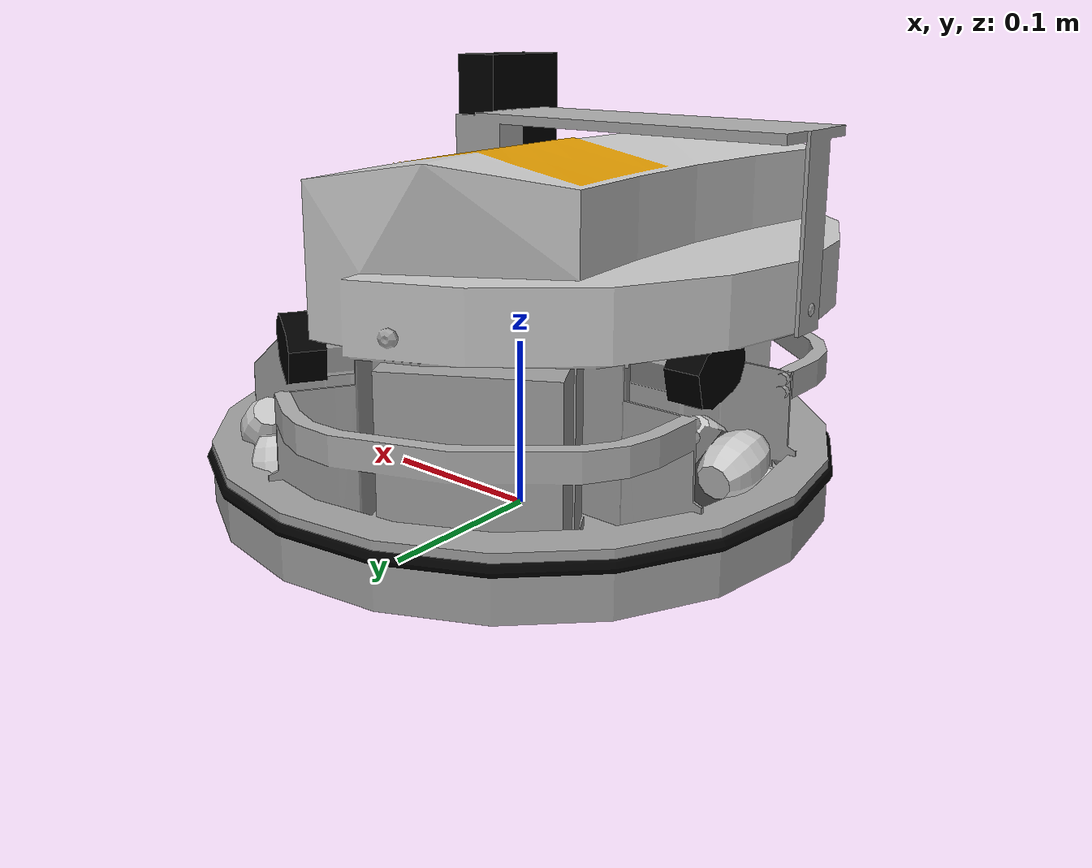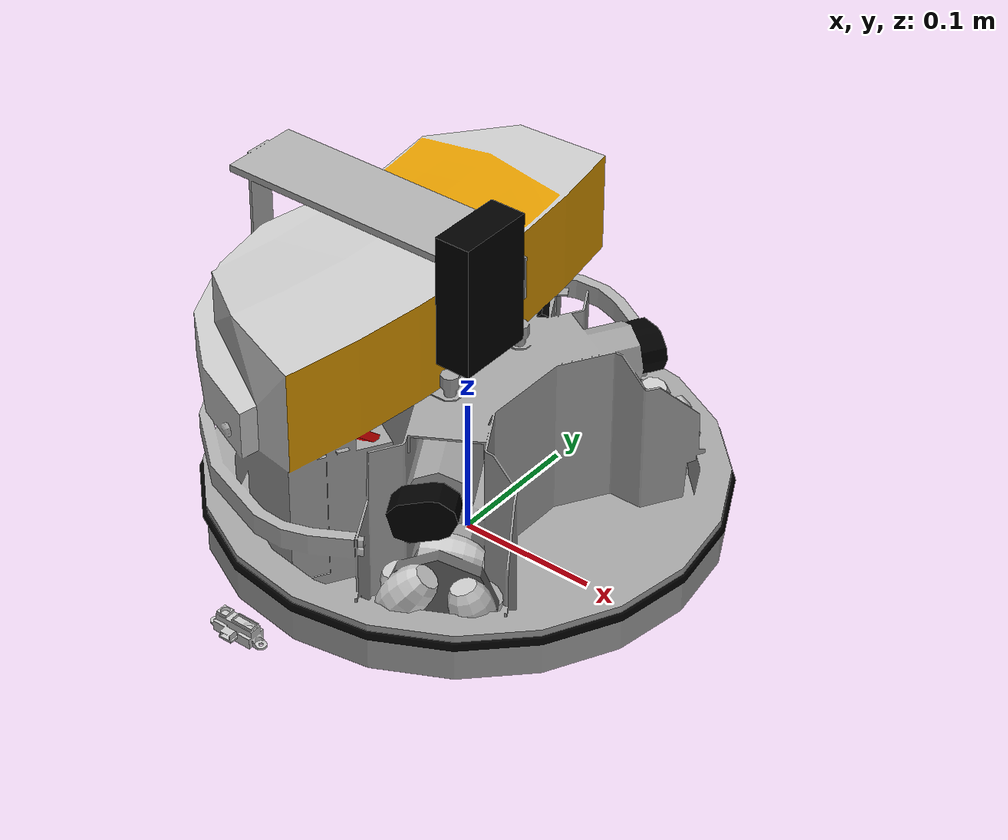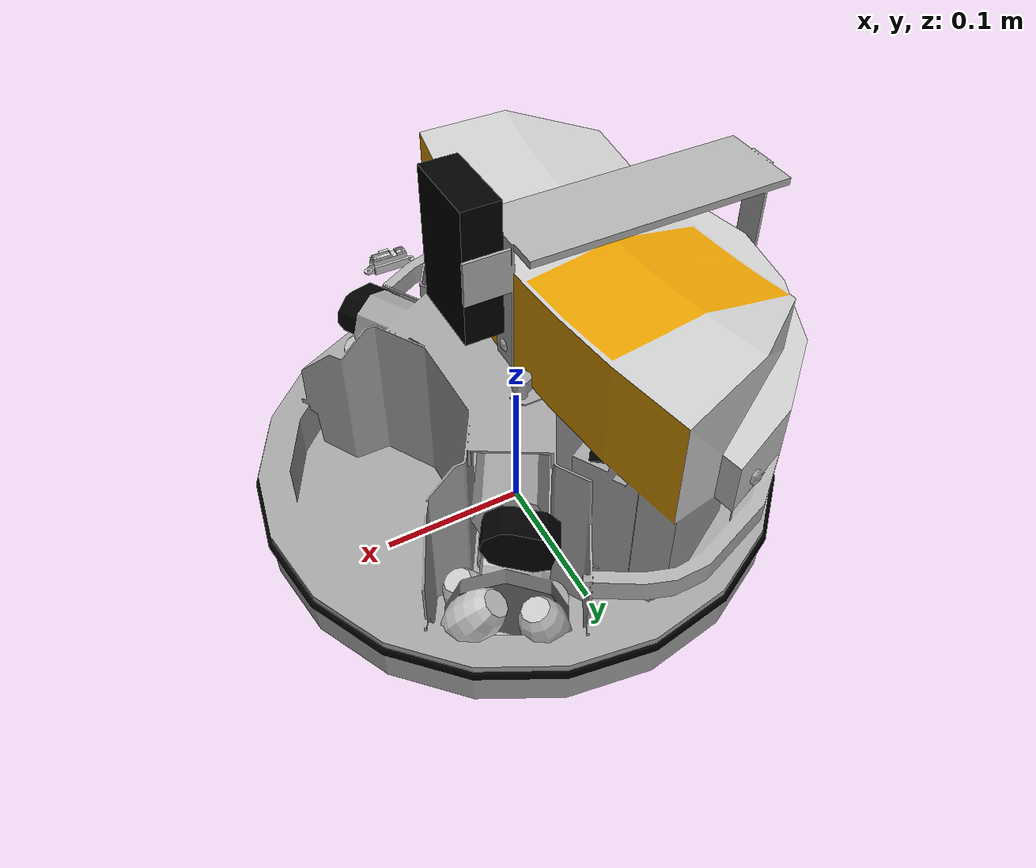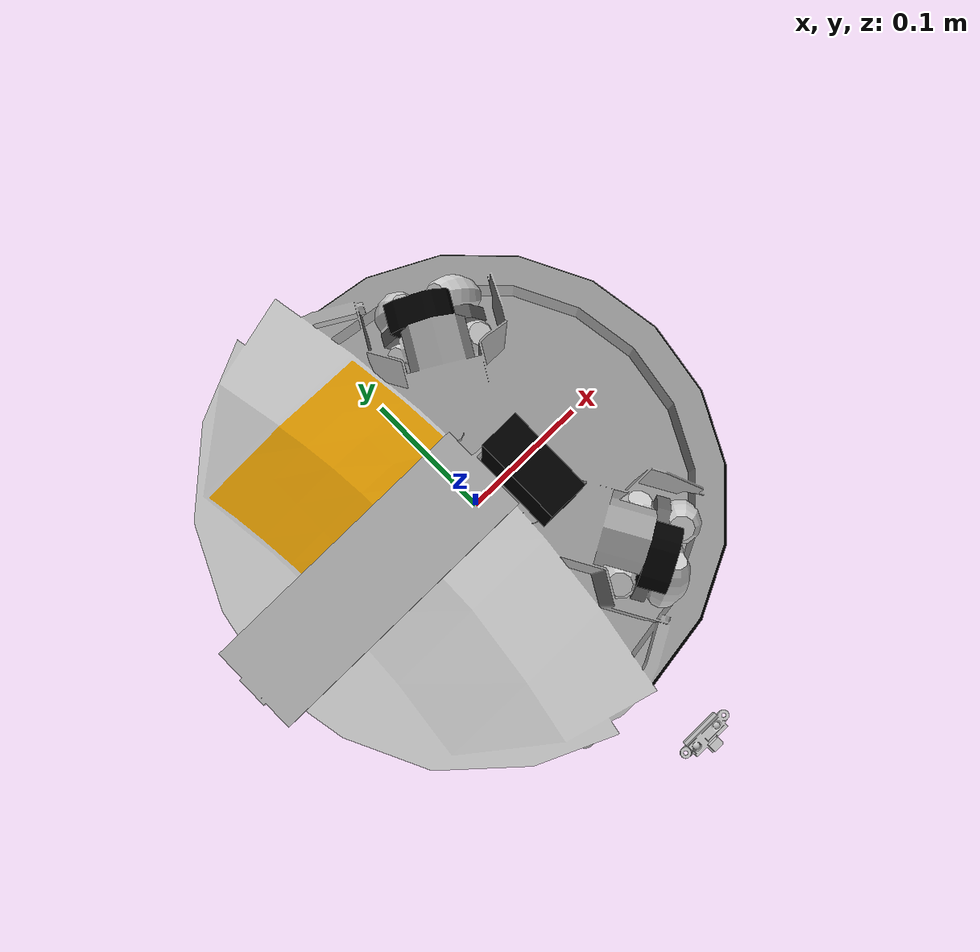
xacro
<?xml version="1.0"?>
<robot xmlns:xacro="http://wiki.ros.org/xacro" name="robotino">
  <!-- Instanciate and include the robotino_body -->
  <xacro:include filename="$(find robotino_description)/urdf/components/robotino_body.urdf.xacro"/>
  <xacro:robotino_body/>
  <!-- Instanciate and include the robotino_parts -->
  <xacro:include filename="$(find robotino_description)/urdf/components/robotino_parts.urdf.xacro"/>
  <xacro:wheel name="wheel0" parent="base_link">
    <origin xyz="0.065 0.11 0.04" rpy="0 0 1.04719666667"/>
    <axis xyz="-1 0 0"/>
  </xacro:wheel>
  <xacro:wheel name="wheel1" parent="base_link">
    <origin xyz="-0.13 0 0.04" rpy="0 0 0"/>
    <axis xyz="1 0 0"/>
  </xacro:wheel>
  <xacro:wheel name="wheel2" parent="base_link">
    <origin xyz="0.065 -0.11 0.04" rpy="0 0 -1.04719666667"/>
    <axis xyz="-1 0 0"/>
  </xacro:wheel>
  <xacro:command_bridge name="command_bridge" parent="base_link">
    <origin rpy="0 0 1.570795" xyz="-0.05 0 0.13"/>
  </xacro:command_bridge>
  <xacro:anglebracketusb name="anglebracketusb" parent="base_link">
    <origin rpy="0 0 1.570795" xyz="0.008 0 0.137"/>
  </xacro:anglebracketusb>
  <xacro:include filename="$(find robotino_description)/urdf/sensors/Sharp_IR_Sensor.urdf.xacro"/>
  <xacro:Ir_sensor name="ir1" parent="base_link">
    <origin rpy="0 0 0" xyz="0 -0.2264 0.0566"/>
  </xacro:Ir_sensor>
</robot>

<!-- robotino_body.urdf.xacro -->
<robot xmlns:xacro="http://wiki.ros.org/xacro">
  <xacro:property name="M_PI" value="3.14159"/>
  <xacro:property name="M_SCALE" value="0.01"/>
  <xacro:property name="BASE_RADIUS" value="0.18"/>
  <xacro:property name="BASE_HEIGHT" value="0.05"/>
  <xacro:property name="BASE_MASS" value="20"/>
  <!-- robotino_body -->
  <xacro:macro name="robotino_body">
    <!-- base_link -->
    <link name="base_link">
      <inertial>
        <mass value="${BASE_MASS}"/>
        <origin xyz="0 0 0"/>
        <inertia ixx="1.0" ixy="0.0" ixz="0.0" iyy="1.0" iyz="0.0" izz="1.0"/>
      </inertial>
      <visual>
        <origin xyz="0.01 0 0" rpy="0 0 ${M_PI/2}"/>
        <geometry>
          <mesh filename="package://robotino_description/meshes/parts/robotino_base.dae" scale="${M_SCALE} ${M_SCALE} ${M_SCALE}"/>
        </geometry>
      </visual>
      <collision>
        <origin xyz="0 0 ${BASE_HEIGHT/2}" rpy="0 0 0"/>
        <geometry>
          <cylinder radius="${BASE_RADIUS}" length="${BASE_HEIGHT}"/>
        </geometry>
      </collision>
    </link>
  </xacro:macro>
</robot>

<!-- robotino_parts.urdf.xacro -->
<robot xmlns:xacro="http://wiki.ros.org/xacro">
  <xacro:property name="M_PI" value="3.14159"/>
  <xacro:property name="M_SCALE" value="0.01"/>
  <xacro:property name="PLATFORM_HEIGHT" value="0.58"/>
  <xacro:property name="PLATFORM_RADIUS" value="0.22"/>
  <!-- wheel -->
  <xacro:macro name="wheel" params="parent name *origin *axis">
    <link name="${name}_link">
      <inertial>
        <mass value="0.00001"/>
        <origin xyz="0 0 0"/>
        <inertia ixx="1.0" ixy="0.0" ixz="0.0" iyy="1.0" iyz="0.0" izz="1.0"/>
      </inertial>
      <visual>
        <origin xyz="0 0 0" rpy="0 0 0"/>
        <geometry>
          <mesh filename="package://robotino_description/meshes/parts/robotino_wheel.dae" scale="${M_SCALE} ${M_SCALE} ${M_SCALE}"/>
        </geometry>
      </visual>
    </link>
    <joint name="${name}_joint" type="continuous">
      <xacro:insert_block name="origin"/>
      <xacro:insert_block name="axis"/>
      <parent link="${parent}"/>
      <child link="${name}_link"/>
    </joint>
    <transmission name="${name}_joint_trans">
      <type>transmissio_interface/SimpleTransmission</type>
      <joint name="${name}_joint"/>
      <actuator name="${name}_motor">
        <hardwareInterface>EffortJointInterface</hardwareInterface>
        <mechanicalReducation>1</mechanicalReducation>
      </actuator>
    </transmission>
  </xacro:macro>
  <!-- command bridge -->
  <xacro:macro name="command_bridge" params="parent name *origin">
    <link name="${name}_link">
      <inertial>
        <mass value="0.00001"/>
        <origin xyz="0 0 0"/>
        <inertia ixx="1.0" ixy="0.0" ixz="0.0" iyy="1.0" iyz="0.0" izz="1.0"/>
      </inertial>
      <collision>
        <origin xyz="0 0 0" rpy="0 0 0"/>
        <geometry>
          <box size="0.25 0.11 0.16"/>
        </geometry>
      </collision>
    </link>
    <joint name="${name}_joint" type="fixed">
      <xacro:insert_block name="origin"/>
      <parent link="${parent}"/>
      <child link="${name}_link"/>
    </joint>
  </xacro:macro>
  <!-- angle bracket with USB hub -->
  <xacro:macro name="anglebracketusb" params="parent name *origin">
    <link name="${name}_link">
      <inertial>
        <mass value="0.00001"/>
        <origin xyz="0 0 0"/>
        <inertia ixx="1.0" ixy="0.0" ixz="0.0" iyy="1.0" iyz="0.0" izz="1.0"/>
      </inertial>
      <visual>
        <origin xyz="0 0 0" rpy="0 0 0"/>
        <geometry>
          <mesh filename="package://robotino_description/meshes/parts/angle_bracket_usb_hub.dae" scale="${M_SCALE} ${M_SCALE} ${M_SCALE}"/>
        </geometry>
      </visual>
    </link>
    <joint name="${name}_joint" type="fixed">
      <xacro:insert_block name="origin"/>
      <parent link="${parent}"/>
      <child link="${name}_link"/>
    </joint>
  </xacro:macro>
  <!-- platform -->
  <xacro:macro name="platform" params="parent name *origin">
    <link name="${name}_link">
      <inertial>
        <mass value="0.00001"/>
        <origin xyz="0 0 0"/>
        <inertia ixx="1.0" ixy="0.0" ixz="0.0" iyy="1.0" iyz="0.0" izz="1.0"/>
      </inertial>
      <visual>
        <origin xyz="0 0 ${PLATFORM_HEIGHT/2}"/>
        <geometry>
          <cylinder radius="0.04" length="${PLATFORM_HEIGHT}"/>
        </geometry>
      </visual>
      <visual>
        <origin xyz="0 0 ${PLATFORM_HEIGHT}"/>
        <geometry>
          <!-- actual length = 0.015 -->
          <cylinder radius="${PLATFORM_RADIUS}" length="0.02"/>
        </geometry>
      </visual>
    </link>
    <joint name="${name}_joint" type="fixed">
      <xacro:insert_block name="origin"/>
      <parent link="${parent}"/>
      <child link="${name}_link"/>
    </joint>
  </xacro:macro>
</robot>

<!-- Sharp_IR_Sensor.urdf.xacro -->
<robot xmlns:xacro="http://wiki.ros.org/xacro">
  <xacro:property name="M_PI" value="3.14159"/>
  <xacro:property name="M_SCALE" value="0.001"/>
  <xacro:macro name="Ir_sensor" params="parent name *origin">
    <link name="${name}_link">
      <inertial>
        <mass value="0.00001"/>
        <origin xyz="0 0 0"/>
        <inertia ixx="1.0" ixy="0.0" ixz="0.0" iyy="1.0" iyz="0.0" izz="1.0"/>
      </inertial>
      <visual>
        <origin xyz="0 0 0" rpy="0 0 0"/>
        <geometry>
          <mesh filename="package://robotino_description/meshes/sensors/Sharp_IR_Sensor_GP2Y0A41SK0F.dae" scale="${M_SCALE} ${M_SCALE} ${M_SCALE}"/>
        </geometry>
      </visual>
    </link>
    <joint name="${name}_joint" type="fixed">
      <insert_block name="origin"/>
      <parent link="${parent}"/>
      <child link="${name}_link"/>
    </joint>
  </xacro:macro>
</robot>
